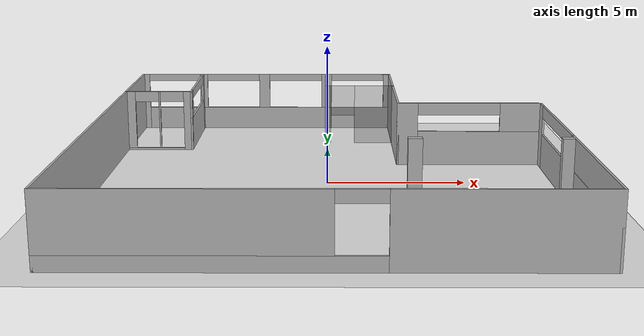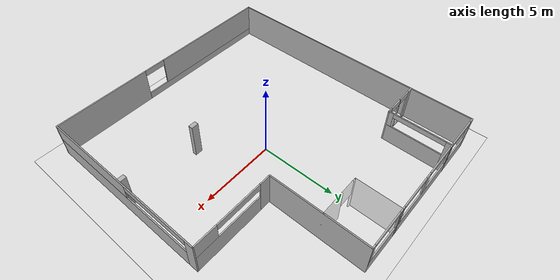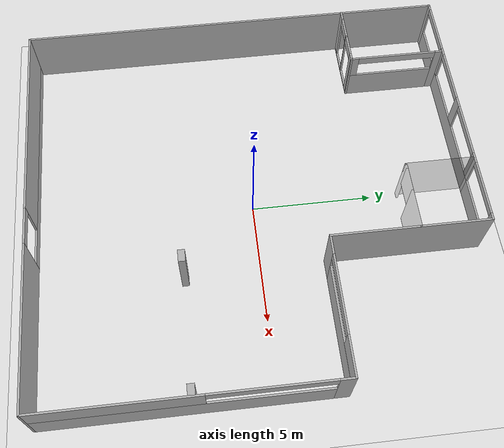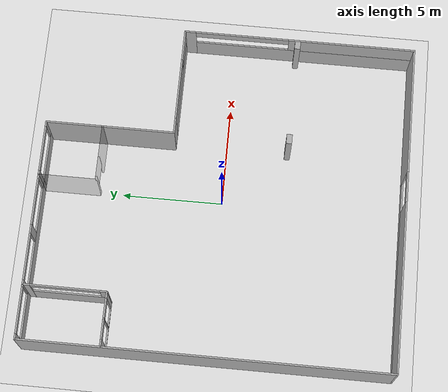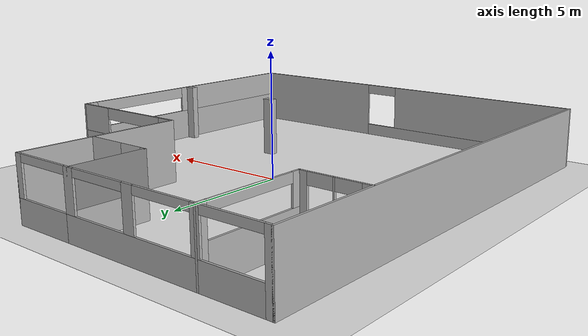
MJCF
<mujoco model="mobot_lab">
<compiler angle="radian" autolimits="true"/>

  <!-- Assets: meshes used in the environment -->
  <asset>
    <mesh name="lab" file="../environment/models/mobot_lab/mesh/mobot_lab.stl" scale="1 1 1"/>
  </asset>

  <option gravity="0 0 -9.81" integrator="implicitfast" impratio="1000" timestep=".001" cone="elliptic" noslip_iterations="3"/>
  <option><flag multiccd="enable"/> </option>
  <!-- The world and static elements -->
  <worldbody>

        <!-- Wall 0 -->
        <body name="wall_0" pos="-8.219 -0.00025 0" quat="0.7071055 0 0 0.7071081">
            <geom type="box" pos="0 0 1.22" size="9.011 0.04 1.22" rgba="0.7 0.7 0.7 1"/>
        </body>
        <body pos = "0 0 2">
        </body>
        <!-- Wall 1 -->
        <body name="wall_1" pos="-2.75 8.97075 0" quat="1 0 0 0">
            <geom type="box" pos="-5.35985 0 1.22" size="0.149151 0.04 1.22" rgba="0.7 0.7 0.7 1"/>
            <geom type="box" pos="-1.15386 0 0.47" size="4.056835 0.04 0.47" rgba="0.7 0.7 0.7 1" />
            <geom type="box" pos="4.20599 0 0.46925" size="1.303015 0.04 0.46925" rgba="0.7 0.7 0.7 1" />
            <geom type="box" pos="5.36099 0 1.68925" size="0.148015 0.04 0.75075" rgba="0.7 0.7 0.7 1" />
            <geom type="box" pos="-2.79205 0 1.69" size="0.1686455 0.04 0.75" rgba="0.7 0.7 0.7 1" />
            <geom type="box" pos="-0.081401 0 1.69" size="0.232007 0.04 0.75" rgba="0.7 0.7 0.7 1" />
            <geom type="box" pos="2.68179 0 1.69" size="0.2211815 0.04 0.75" rgba="0.7 0.7 0.7 1" />
            <geom type="box" pos="4.06 0 2.29725" size="1.16 0.04 0.14275" rgba="0.7 0.7 0.7 1" />
            <geom type="box" pos="-4.0857 0 2.2975" size="1.125 0.04 0.1425" rgba="0.7 0.7 0.7 1" />
            <geom type="box" pos="-1.46841 0 2.2975" size="1.155 0.04 0.1425" rgba="0.7 0.7 0.7 1" />
            <geom type="box" pos="1.30561 0 2.2975" size="1.155 0.04 0.1425" rgba="0.7 0.7 0.7 1" />
        </body>

        <!-- Wall 2 -->
        <body name="wall_2" pos="2.719 5.79975 0" quat="0.7071055 0 0 -0.7071081 ">
            <geom type="box" pos="0 0 1.22" size="3.211 0.04 1.22" rgba="0.7 0.7 0.7 1" />
        </body>

        <!-- Wall 3 -->
        <body name="wall_3" pos="5.469 2.62875 0" quat="1 0 0 0">
            <geom type="box" pos="-2.38604 0 1.22" size="0.4039655 0.04 1.22" rgba="0.7 0.7 0.7 1" />
            <geom type="box" pos="0.403965 0 0.664" size="2.386035 0.04 0.664" rgba="0.7 0.7 0.7 1" />
            <geom type="box" pos="1.98396 0 1.884" size="0.806035 0.04 0.556" rgba="0.7 0.7 0.7 1" />
            <geom type="box" pos="-0.402069 0 2.2055" size="1.58 0.04 0.2345" rgba="0.7 0.7 0.7 1" />
        </body>

        <!-- Wall 4 -->
        <body name="wall_4" pos="8.219 -3.17125 0" quat="0.7071055 0 0 -0.7071081 ">
            <geom type="box" pos="-5.53844 0 1.22" size="0.3015635 0.04 1.22" rgba="0.7 0.7 0.7 1" />
            <geom type="box" pos="0.301563 0 0.664" size="5.53845 0.04 0.664" rgba="0.7 0.7 0.7 1" />
            <geom type="box" pos="2.65156 0 1.884" size="3.188435 0.04 0.556" rgba="0.7 0.7 0.7 1" />
            <geom type="box" pos="-2.88687 0 2.2055" size="2.35 0.04 0.2345" rgba="0.7 0.7 0.7 1" />
        </body>

        <!-- Wall 5 -->
        <body name="wall_5" pos="-1e-06 -8.97125 0" quat="0 0 0 1">
            <geom type="box" pos="-5.00975 0 1.22" size="3.24925 0.04 1.22" rgba="0.7 0.7 0.7 1" />
            <geom type="box" pos="3.24925 0 0.252" size="5.00975 0.04 0.252" rgba="0.7 0.7 0.7 1" />
            <geom type="box" pos="4.01175 0 1.472" size="4.24725 0.04 0.968" rgba="0.7 0.7 0.7 1" />
            <geom type="box" pos="-0.998 0 2.2345" size="0.7625 0.04 0.2055" rgba="0.7 0.7 0.7 1" />
        </body>

        <!-- Wall 6 -->
        <body name="wall_6" pos="-0.075 7.56525 0" quat="0.7071055 0 0 -0.7071081 ">
            <geom type="box" pos="0 0 1.22" size="1.4455 0.04 1.22" rgba="0 0 0 0.2" />
        </body>

        <!-- Wall 7 -->
        <body name="wall_7" pos="1.322 6.15975 0" quat="1 0 0 0">
            <geom type="box" pos="-1.3205 0 1.22" size="0.1165 0.04 1.22" rgba="0 0 0 0.2" />
            <geom type="box" pos="0.6165 0 1.22" size="0.8205 0.04 1.22" rgba="0 0 0 0.2" />
            <geom type="box" pos="-0.704 0 1.82" size="0.5 0.04 0.62" rgba="0 0 0 0.2" />
        </body>

        <!-- Wall 8 -->
        <body name="wall_8" pos="-5.573 6.95675 0" quat="0.7071055 0 0 -0.7071081 ">
            <geom type="box" pos="-1.86269 0 1.22" size="0.1918115 0.04 1.22" rgba="0.7 0.7 0.7 1" />
            <geom type="box" pos="0.191811 0 0.664" size="1.86269 0.04 0.664" rgba="0.7 0.7 0.7 1" />
            <geom type="box" pos="1.87181 0 1.884" size="0.1826885 0.04 0.556" rgba="0.7 0.7 0.7 1" />
            <geom type="box" pos="0.009123 0 2.264" size="1.68 0.04 0.176" rgba="0.7 0.7 0.7 1" />
        </body>

        <!-- Wall 9 -->
        <body name="wall_9" pos="-6.896 4.94275 0" quat="0 0 0 1">
            <geom type="box" pos="-1.18609 0 1.22" size="0.176907 0.04 1.22" rgba="0.7 0.7 0.7 1" />
            <geom type="box" pos="0.176907 0 0.045" size="1.18609 0.04 0.045" rgba="0.7 0.7 0.7 1" />
            <geom type="box" pos="-0.027899 0 1.265" size="0.0312875 0.04 1.175" rgba="0.7 0.7 0.7 1" />
            <geom type="box" pos="1.15819 0 1.265" size="0.2048055 0.04 1.175" rgba="0.7 0.7 0.7 1" />
            <geom type="box" pos="-0.534186 0 2.23" size="0.475 0.04 0.21" rgba="0.7 0.7 0.7 1" />
            <geom type="box" pos="0.478389 0 2.23" size="0.475 0.04 0.21" rgba="0.7 0.7 0.7 1" />
        </body>

        <!-- Wall 11 -->
        <body name="wall_11" pos="2.9225 -3.0685 0" quat="1 0 0 0">
            <geom type="box" pos="0 0 1.22" size="0.2425 0.14 1.22" rgba="0.7 0.7 0.7 1" />
        </body>

        <!-- Wall 12 -->
        <body name="wall_12" pos="7.9835 -3.0985 0" quat="1 0 0 0">
            <geom type="box" pos="0 0 1.22" size="0.2065 0.14 1.22" rgba="0.7 0.7 0.7 1" />
        </body>

        <!-- Wall 13 -->

        <!-- Wall 14 -->

        <!-- Wall 15/ floor -->
        <body name="wall_15" pos="0 0 0" quat="1 0 0 0">
            <geom type="plane" pos="0 0 0" size="10 10 0.1" rgba="0.9 0.9 0.9 1" contype="1" conaffinity="1"/>
        </body>

        <camera mode="fixed" name="birdview" pos="1.0 0 4.0" quat="0.7071 0 0 0.7071"/>
        <camera mode="fixed" name="side_view" pos="1.0 -1.5 1.0" quat="0.7071 0.7071 0 0"/>
        <camera mode="fixed" name="front_view" pos="2.0 0.0 1.0" quat="0.5 0.5 0.5 0.5"/>

  </worldbody>
    <actuator></actuator>

</mujoco>
